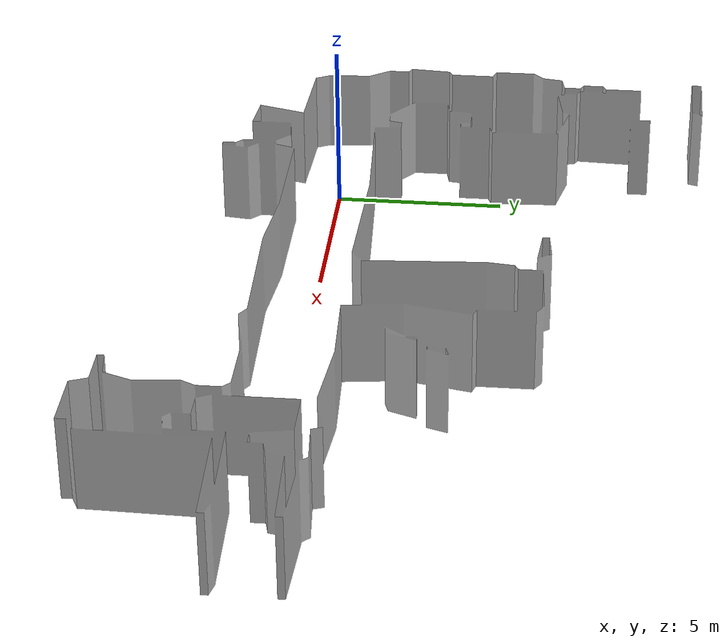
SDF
<?xml version="1.0"?>
<sdf version="1.9">
  <world name="indoor_environment">
    <gravity>0 0 -9.81</gravity>
    <include><uri>model://sun</uri></include>
    <model name="scanned_environment">
      <static>true</static>
      <link name="environment_link">
        <collision name="collision"><geometry><mesh><uri>model://scanned_environment/meshes/environment.obj</uri><scale>1 1 1</scale></mesh></geometry></collision>
        <visual name="visual"><geometry><mesh><uri>model://scanned_environment/meshes/environment.obj</uri><scale>1 1 1</scale></mesh></geometry></visual>
      </link>
    </model>
  </world>
</sdf>
